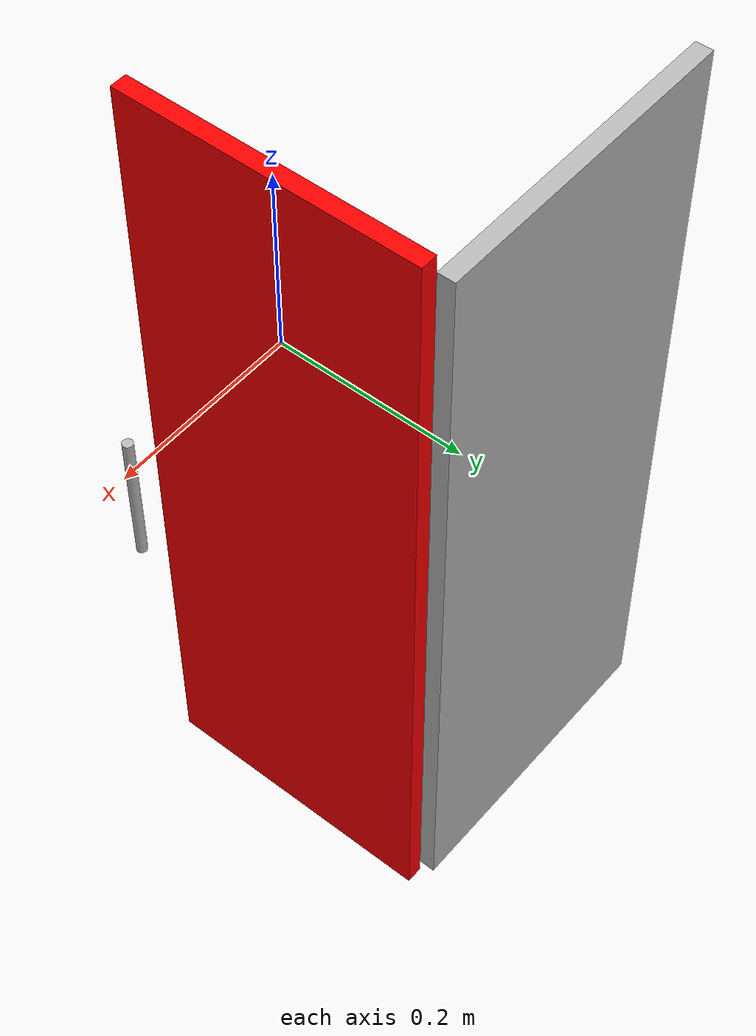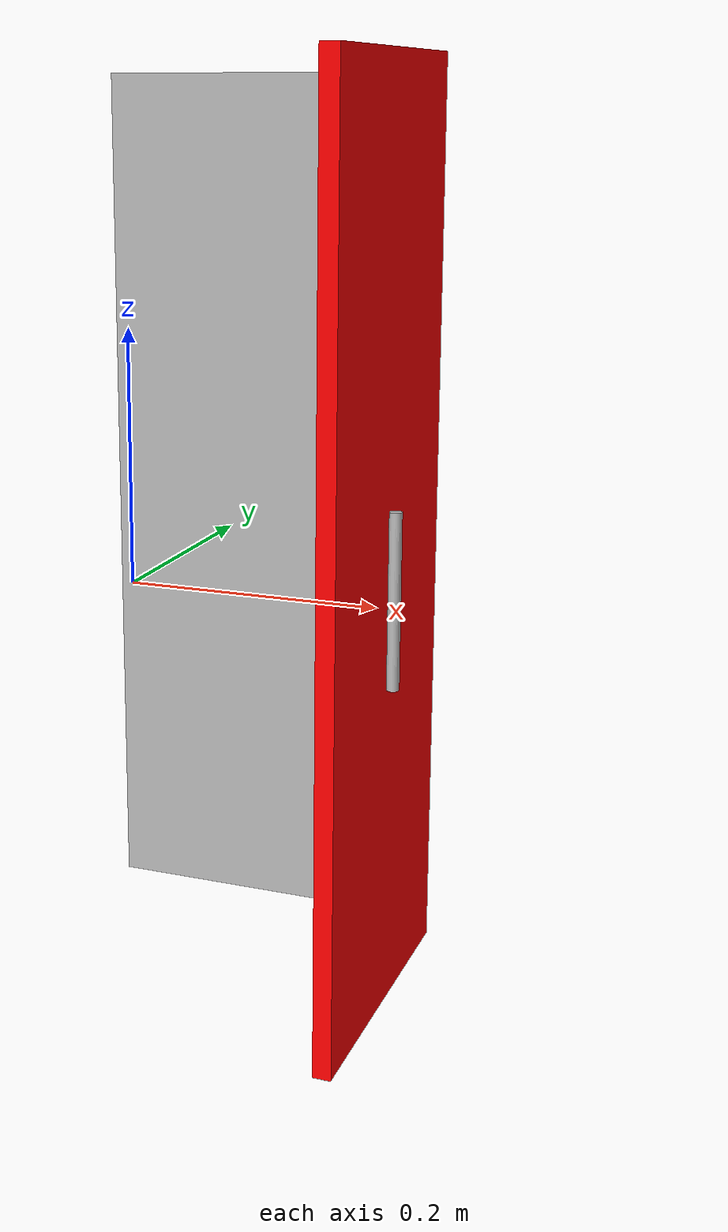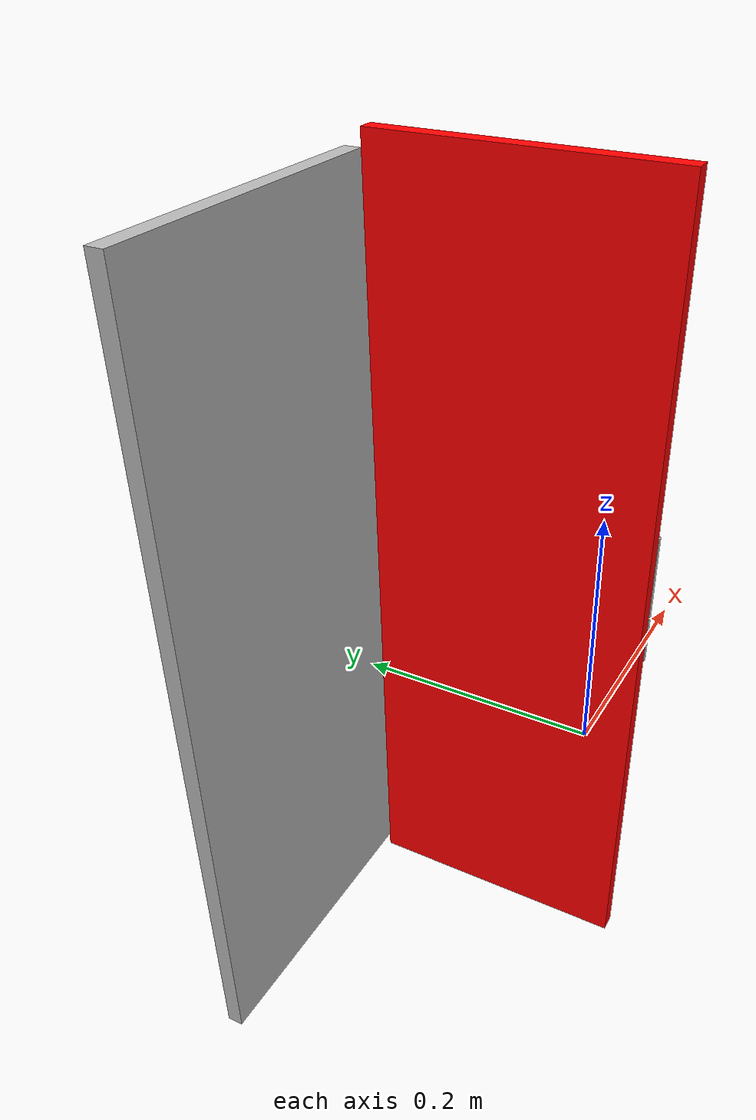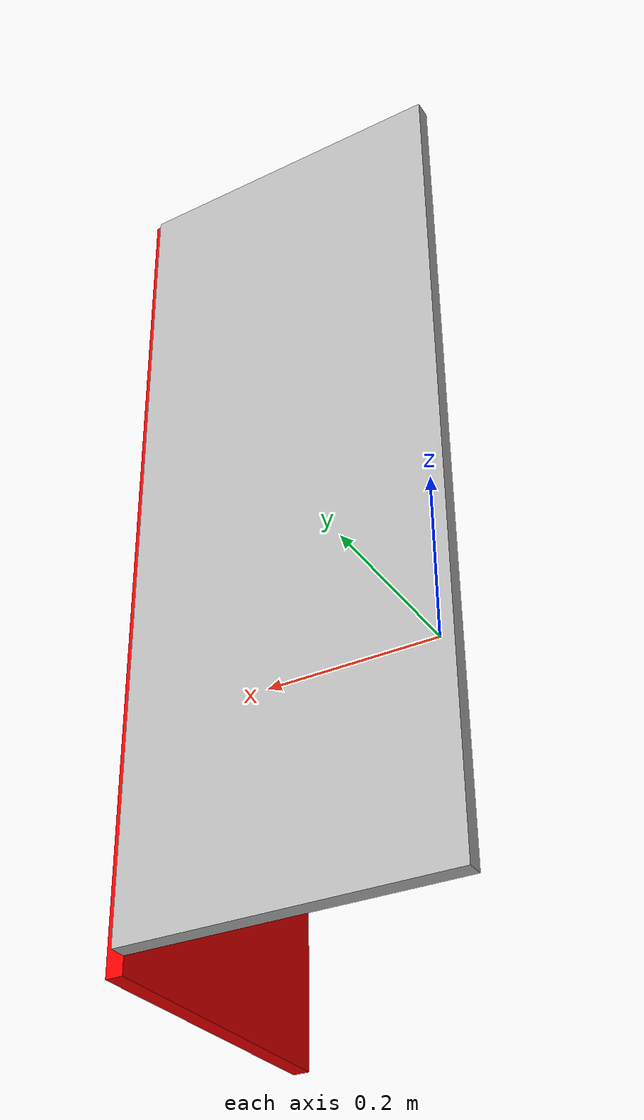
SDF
<?xml version="1.0"?>
<sdf version="1.6">
  <model name="simple_hinge">
    <link name="base">
      <visual name="right_wall">
        <pose> 0 0.292 0 0 0 0</pose>
        <geometry>
          <box>
            <size>0.3 0.016 0.783</size>
          </box>
        </geometry>
      </visual>
      <collision name="right_wall">
        <pose> 0 0.292 0 0 0 0</pose>
        <geometry>
          <box>
            <size>0.3 0.016 0.783</size>
          </box>
        </geometry>
      </collision>
    </link>
    <!-- joint between cupboard_body and left_door -->
    <joint name="right_door_hinge" type="revolute">
      <child>right_door</child>
      <parent>base</parent>
      <pose>-0.008 0.1395 0 0 0 </pose>
      <axis>
        <xyz> 0 0 1 </xyz>
        <limit>
          <effort>0</effort>
        </limit>
        <dynamics>
          <damping>0.1</damping>
        </dynamics>
      </axis>
    </joint>
    <link name="right_door">
      <pose> 0.158 0.1445 0 0 0 0</pose>
      <inertial>
        <mass>1</mass>
        <inertia>
          <ixx>0.01042</ixx>
          <ixy>0</ixy>
          <ixz>0</ixz>
          <iyy>0.00542</iyy>
          <iyz>0</iyz>
          <izz>0.00542</izz>
        </inertia>
      </inertial>
      <visual name="cylinder">
        <pose> 0.05 -0.1245 0 0 0 0</pose>
        <geometry>
          <cylinder>
            <length>0.14</length>
            <radius>0.005</radius>
          </cylinder>
        </geometry>
      </visual>
      <visual name="slab">
        <geometry>
          <box>
            <size>0.016 0.279 0.815</size>
          </box>
        </geometry>
        <material>
          <diffuse>1 0 0 1.0</diffuse>
        </material>
      </visual>
      <collision name="cylinder">
        <pose> 0.05 -0.1245 0 0 0 0</pose>
        <geometry>
          <cylinder>
            <length>0.14</length>
            <radius>0.005</radius>
          </cylinder>
        </geometry>
      </collision>
      <collision name="slab">
        <geometry>
          <box>
            <size>0.016 0.279 0.815</size>
          </box>
        </geometry>
      </collision>
    </link>
    <joint name="handle_jt" type="fixed">
      <child>handle</child>
      <parent>right_door</parent>
      <pose>0 0.0 0 0 0 </pose>
    </joint>
    <link name="handle">
      <pose> 0.2 0.05 0.1 0 -3.1415 0</pose>
    </link>
  </model>
</sdf>
